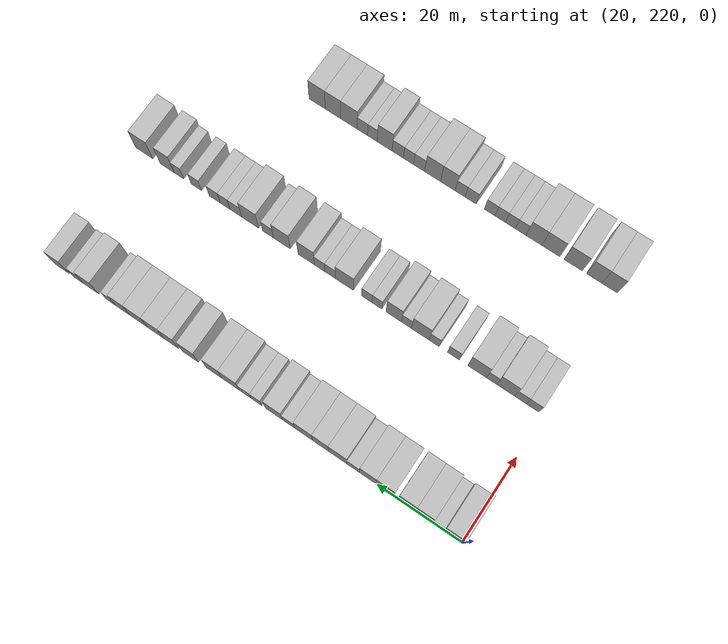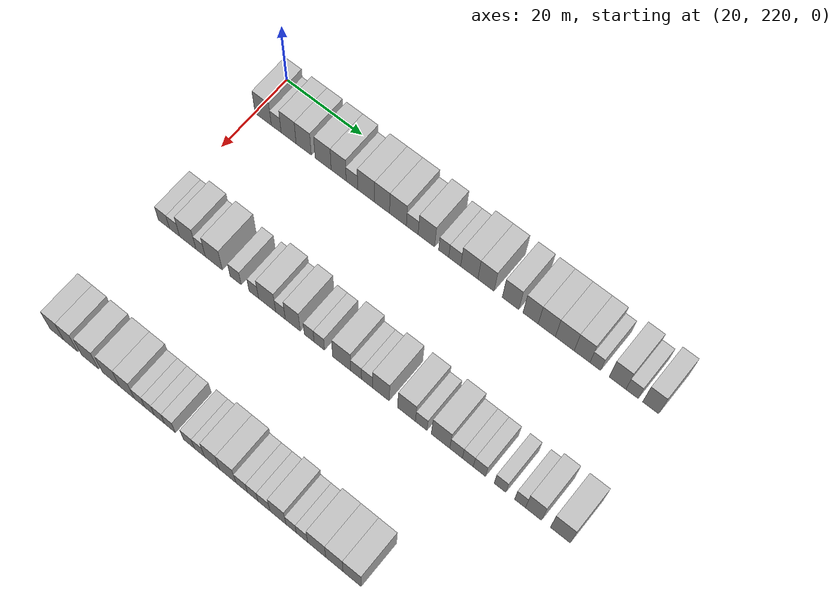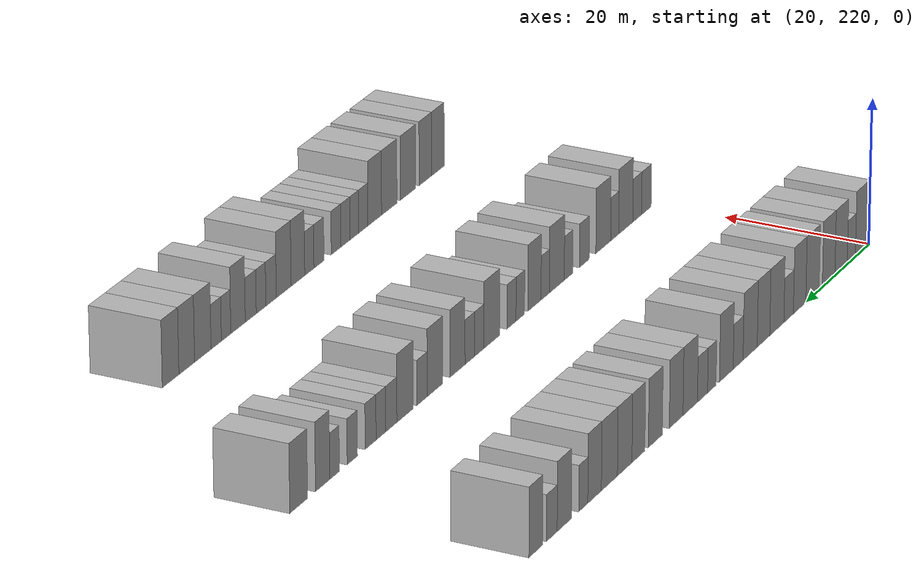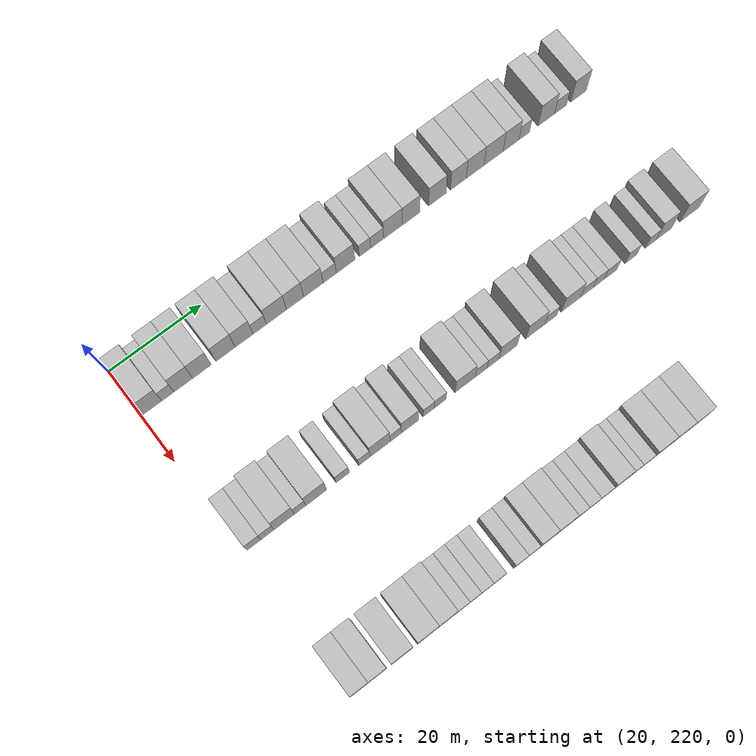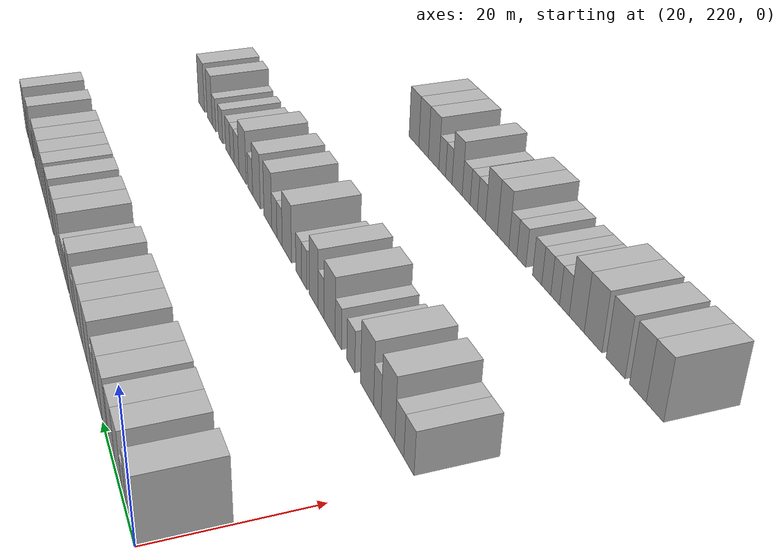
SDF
<sdf version="1.6">
 <world name="default">
  <model name="building_163">
   <static>1</static>
   <pose>25.0000 222.2776 0 0.000000 0.000000 0.000000</pose>
   <link name="link">
    <pose>0 0 4.50 0 0 0</pose>
    <collision name="collision"><geometry><box><size>10.0000 4.3677 9.0000</size></box></geometry></collision>
    <visual name="visual">
     <cast_shadows>0</cast_shadows>
     <geometry><box><size>10.0000 4.3677 9.0000</size></box></geometry>
     <material>
      <script>
       <uri>model://HANNAS_wall/materials/scripts</uri>
       <uri>model://HANNAS_wall/materials/textures</uri>
       <name>vrc/HANNAS_wall</name>
      </script>
     </material>
    </visual>
   </link>
  </model>
  <model name="building_164">
   <static>1</static>
   <pose>25.0000 225.7676 0 0.000000 0.000000 0.000000</pose>
   <link name="link">
    <pose>0 0 3.00 0 0 0</pose>
    <collision name="collision"><geometry><box><size>10.0000 2.6122 6.0000</size></box></geometry></collision>
    <visual name="visual">
     <cast_shadows>0</cast_shadows>
     <geometry><box><size>10.0000 2.6122 6.0000</size></box></geometry>
     <material>
      <script>
       <uri>model://HANNAS_wall/materials/scripts</uri>
       <uri>model://HANNAS_wall/materials/textures</uri>
       <name>vrc/HANNAS_wall</name>
      </script>
     </material>
    </visual>
   </link>
  </model>
  <model name="building_165">
   <static>1</static>
   <pose>25.0000 229.0635 0 0.000000 0.000000 0.000000</pose>
   <link name="link">
    <pose>0 0 4.50 0 0 0</pose>
    <collision name="collision"><geometry><box><size>10.0000 3.9796 9.0000</size></box></geometry></collision>
    <visual name="visual">
     <cast_shadows>0</cast_shadows>
     <geometry><box><size>10.0000 3.9796 9.0000</size></box></geometry>
     <material>
      <script>
       <uri>model://HANNAS_wall/materials/scripts</uri>
       <uri>model://HANNAS_wall/materials/textures</uri>
       <name>vrc/HANNAS_wall</name>
      </script>
     </material>
    </visual>
   </link>
  </model>
  <model name="building_166">
   <static>1</static>
   <pose>25.0000 233.0500 0 0.000000 0.000000 0.000000</pose>
   <link name="link">
    <pose>0 0 4.50 0 0 0</pose>
    <collision name="collision"><geometry><box><size>10.0000 3.9934 9.0000</size></box></geometry></collision>
    <visual name="visual">
     <cast_shadows>0</cast_shadows>
     <geometry><box><size>10.0000 3.9934 9.0000</size></box></geometry>
     <material>
      <script>
       <uri>model://HANNAS_wall/materials/scripts</uri>
       <uri>model://HANNAS_wall/materials/textures</uri>
       <name>vrc/HANNAS_wall</name>
      </script>
     </material>
    </visual>
   </link>
  </model>
  <model name="building_167">
   <static>1</static>
   <pose>25.0000 238.1424 0 0.000000 0.000000 0.000000</pose>
   <link name="link">
    <pose>0 0 4.50 0 0 0</pose>
    <collision name="collision"><geometry><box><size>10.0000 4.1913 9.0000</size></box></geometry></collision>
    <visual name="visual">
     <cast_shadows>0</cast_shadows>
     <geometry><box><size>10.0000 4.1913 9.0000</size></box></geometry>
     <material>
      <script>
       <uri>model://HANNAS_wall/materials/scripts</uri>
       <uri>model://HANNAS_wall/materials/textures</uri>
       <name>vrc/HANNAS_wall</name>
      </script>
     </material>
    </visual>
   </link>
  </model>
  <model name="building_168">
   <static>1</static>
   <pose>25.0000 242.1798 0 0.000000 0.000000 0.000000</pose>
   <link name="link">
    <pose>0 0 4.50 0 0 0</pose>
    <collision name="collision"><geometry><box><size>10.0000 3.8835 9.0000</size></box></geometry></collision>
    <visual name="visual">
     <cast_shadows>0</cast_shadows>
     <geometry><box><size>10.0000 3.8835 9.0000</size></box></geometry>
     <material>
      <script>
       <uri>model://HANNAS_wall/materials/scripts</uri>
       <uri>model://HANNAS_wall/materials/textures</uri>
       <name>vrc/HANNAS_wall</name>
      </script>
     </material>
    </visual>
   </link>
  </model>
  <model name="building_169">
   <static>1</static>
   <pose>25.0000 245.5953 0 0.000000 0.000000 0.000000</pose>
   <link name="link">
    <pose>0 0 3.00 0 0 0</pose>
    <collision name="collision"><geometry><box><size>10.0000 2.9475 6.0000</size></box></geometry></collision>
    <visual name="visual">
     <cast_shadows>0</cast_shadows>
     <geometry><box><size>10.0000 2.9475 6.0000</size></box></geometry>
     <material>
      <script>
       <uri>model://HANNAS_wall/materials/scripts</uri>
       <uri>model://HANNAS_wall/materials/textures</uri>
       <name>vrc/HANNAS_wall</name>
      </script>
     </material>
    </visual>
   </link>
  </model>
  <model name="building_170">
   <static>1</static>
   <pose>25.0000 249.2444 0 0.000000 0.000000 0.000000</pose>
   <link name="link">
    <pose>0 0 4.50 0 0 0</pose>
    <collision name="collision"><geometry><box><size>10.0000 4.3506 9.0000</size></box></geometry></collision>
    <visual name="visual">
     <cast_shadows>0</cast_shadows>
     <geometry><box><size>10.0000 4.3506 9.0000</size></box></geometry>
     <material>
      <script>
       <uri>model://HANNAS_wall/materials/scripts</uri>
       <uri>model://HANNAS_wall/materials/textures</uri>
       <name>vrc/HANNAS_wall</name>
      </script>
     </material>
    </visual>
   </link>
  </model>
  <model name="building_171">
   <static>1</static>
   <pose>25.0000 253.3338 0 0.000000 0.000000 0.000000</pose>
   <link name="link">
    <pose>0 0 4.50 0 0 0</pose>
    <collision name="collision"><geometry><box><size>10.0000 3.8282 9.0000</size></box></geometry></collision>
    <visual name="visual">
     <cast_shadows>0</cast_shadows>
     <geometry><box><size>10.0000 3.8282 9.0000</size></box></geometry>
     <material>
      <script>
       <uri>model://HANNAS_wall/materials/scripts</uri>
       <uri>model://HANNAS_wall/materials/textures</uri>
       <name>vrc/HANNAS_wall</name>
      </script>
     </material>
    </visual>
   </link>
  </model>
  <model name="building_172">
   <static>1</static>
   <pose>25.0000 257.3869 0 0.000000 0.000000 0.000000</pose>
   <link name="link">
    <pose>0 0 4.50 0 0 0</pose>
    <collision name="collision"><geometry><box><size>10.0000 4.2780 9.0000</size></box></geometry></collision>
    <visual name="visual">
     <cast_shadows>0</cast_shadows>
     <geometry><box><size>10.0000 4.2780 9.0000</size></box></geometry>
     <material>
      <script>
       <uri>model://HANNAS_wall/materials/scripts</uri>
       <uri>model://HANNAS_wall/materials/textures</uri>
       <name>vrc/HANNAS_wall</name>
      </script>
     </material>
    </visual>
   </link>
  </model>
  <model name="building_173">
   <static>1</static>
   <pose>25.0000 261.0052 0 0.000000 0.000000 0.000000</pose>
   <link name="link">
    <pose>0 0 3.00 0 0 0</pose>
    <collision name="collision"><geometry><box><size>10.0000 2.9587 6.0000</size></box></geometry></collision>
    <visual name="visual">
     <cast_shadows>0</cast_shadows>
     <geometry><box><size>10.0000 2.9587 6.0000</size></box></geometry>
     <material>
      <script>
       <uri>model://HANNAS_wall/materials/scripts</uri>
       <uri>model://HANNAS_wall/materials/textures</uri>
       <name>vrc/HANNAS_wall</name>
      </script>
     </material>
    </visual>
   </link>
  </model>
  <model name="building_174">
   <static>1</static>
   <pose>25.0000 264.5489 0 0.000000 0.000000 0.000000</pose>
   <link name="link">
    <pose>0 0 4.50 0 0 0</pose>
    <collision name="collision"><geometry><box><size>10.0000 4.1287 9.0000</size></box></geometry></collision>
    <visual name="visual">
     <cast_shadows>0</cast_shadows>
     <geometry><box><size>10.0000 4.1287 9.0000</size></box></geometry>
     <material>
      <script>
       <uri>model://HANNAS_wall/materials/scripts</uri>
       <uri>model://HANNAS_wall/materials/textures</uri>
       <name>vrc/HANNAS_wall</name>
      </script>
     </material>
    </visual>
   </link>
  </model>
  <model name="building_175">
   <static>1</static>
   <pose>25.0000 268.8634 0 0.000000 0.000000 0.000000</pose>
   <link name="link">
    <pose>0 0 3.00 0 0 0</pose>
    <collision name="collision"><geometry><box><size>10.0000 2.5002 6.0000</size></box></geometry></collision>
    <visual name="visual">
     <cast_shadows>0</cast_shadows>
     <geometry><box><size>10.0000 2.5002 6.0000</size></box></geometry>
     <material>
      <script>
       <uri>model://HANNAS_wall/materials/scripts</uri>
       <uri>model://HANNAS_wall/materials/textures</uri>
       <name>vrc/HANNAS_wall</name>
      </script>
     </material>
    </visual>
   </link>
  </model>
  <model name="building_176">
   <static>1</static>
   <pose>25.0000 271.5925 0 0.000000 0.000000 0.000000</pose>
   <link name="link">
    <pose>0 0 3.00 0 0 0</pose>
    <collision name="collision"><geometry><box><size>10.0000 2.9580 6.0000</size></box></geometry></collision>
    <visual name="visual">
     <cast_shadows>0</cast_shadows>
     <geometry><box><size>10.0000 2.9580 6.0000</size></box></geometry>
     <material>
      <script>
       <uri>model://HANNAS_wall/materials/scripts</uri>
       <uri>model://HANNAS_wall/materials/textures</uri>
       <name>vrc/HANNAS_wall</name>
      </script>
     </material>
    </visual>
   </link>
  </model>
  <model name="building_177">
   <static>1</static>
   <pose>25.0000 275.1856 0 0.000000 0.000000 0.000000</pose>
   <link name="link">
    <pose>0 0 4.50 0 0 0</pose>
    <collision name="collision"><geometry><box><size>10.0000 4.2283 9.0000</size></box></geometry></collision>
    <visual name="visual">
     <cast_shadows>0</cast_shadows>
     <geometry><box><size>10.0000 4.2283 9.0000</size></box></geometry>
     <material>
      <script>
       <uri>model://HANNAS_wall/materials/scripts</uri>
       <uri>model://HANNAS_wall/materials/textures</uri>
       <name>vrc/HANNAS_wall</name>
      </script>
     </material>
    </visual>
   </link>
  </model>
  <model name="building_178">
   <static>1</static>
   <pose>25.0000 279.2788 0 0.000000 0.000000 0.000000</pose>
   <link name="link">
    <pose>0 0 4.50 0 0 0</pose>
    <collision name="collision"><geometry><box><size>10.0000 3.9580 9.0000</size></box></geometry></collision>
    <visual name="visual">
     <cast_shadows>0</cast_shadows>
     <geometry><box><size>10.0000 3.9580 9.0000</size></box></geometry>
     <material>
      <script>
       <uri>model://HANNAS_wall/materials/scripts</uri>
       <uri>model://HANNAS_wall/materials/textures</uri>
       <name>vrc/HANNAS_wall</name>
      </script>
     </material>
    </visual>
   </link>
  </model>
  <model name="building_179">
   <static>1</static>
   <pose>25.0000 285.2538 0 0.000000 0.000000 0.000000</pose>
   <link name="link">
    <pose>0 0 4.50 0 0 0</pose>
    <collision name="collision"><geometry><box><size>10.0000 3.9919 9.0000</size></box></geometry></collision>
    <visual name="visual">
     <cast_shadows>0</cast_shadows>
     <geometry><box><size>10.0000 3.9919 9.0000</size></box></geometry>
     <material>
      <script>
       <uri>model://HANNAS_wall/materials/scripts</uri>
       <uri>model://HANNAS_wall/materials/textures</uri>
       <name>vrc/HANNAS_wall</name>
      </script>
     </material>
    </visual>
   </link>
  </model>
  <model name="building_180">
   <static>1</static>
   <pose>25.0000 290.0661 0 0.000000 0.000000 0.000000</pose>
   <link name="link">
    <pose>0 0 4.50 0 0 0</pose>
    <collision name="collision"><geometry><box><size>10.0000 3.6327 9.0000</size></box></geometry></collision>
    <visual name="visual">
     <cast_shadows>0</cast_shadows>
     <geometry><box><size>10.0000 3.6327 9.0000</size></box></geometry>
     <material>
      <script>
       <uri>model://HANNAS_wall/materials/scripts</uri>
       <uri>model://HANNAS_wall/materials/textures</uri>
       <name>vrc/HANNAS_wall</name>
      </script>
     </material>
    </visual>
   </link>
  </model>
  <model name="building_181">
   <static>1</static>
   <pose>25.0000 293.9302 0 0.000000 0.000000 0.000000</pose>
   <link name="link">
    <pose>0 0 4.50 0 0 0</pose>
    <collision name="collision"><geometry><box><size>10.0000 4.0955 9.0000</size></box></geometry></collision>
    <visual name="visual">
     <cast_shadows>0</cast_shadows>
     <geometry><box><size>10.0000 4.0955 9.0000</size></box></geometry>
     <material>
      <script>
       <uri>model://HANNAS_wall/materials/scripts</uri>
       <uri>model://HANNAS_wall/materials/textures</uri>
       <name>vrc/HANNAS_wall</name>
      </script>
     </material>
    </visual>
   </link>
  </model>
  <model name="building_182">
   <static>1</static>
   <pose>25.0000 298.2019 0 0.000000 0.000000 0.000000</pose>
   <link name="link">
    <pose>0 0 4.50 0 0 0</pose>
    <collision name="collision"><geometry><box><size>10.0000 4.4479 9.0000</size></box></geometry></collision>
    <visual name="visual">
     <cast_shadows>0</cast_shadows>
     <geometry><box><size>10.0000 4.4479 9.0000</size></box></geometry>
     <material>
      <script>
       <uri>model://HANNAS_wall/materials/scripts</uri>
       <uri>model://HANNAS_wall/materials/textures</uri>
       <name>vrc/HANNAS_wall</name>
      </script>
     </material>
    </visual>
   </link>
  </model>
  <model name="building_183">
   <static>1</static>
   <pose>25.0000 302.2814 0 0.000000 0.000000 0.000000</pose>
   <link name="link">
    <pose>0 0 4.50 0 0 0</pose>
    <collision name="collision"><geometry><box><size>10.0000 3.7111 9.0000</size></box></geometry></collision>
    <visual name="visual">
     <cast_shadows>0</cast_shadows>
     <geometry><box><size>10.0000 3.7111 9.0000</size></box></geometry>
     <material>
      <script>
       <uri>model://HANNAS_wall/materials/scripts</uri>
       <uri>model://HANNAS_wall/materials/textures</uri>
       <name>vrc/HANNAS_wall</name>
      </script>
     </material>
    </visual>
   </link>
  </model>
  <model name="building_184">
   <static>1</static>
   <pose>25.0000 305.3809 0 0.000000 0.000000 0.000000</pose>
   <link name="link">
    <pose>0 0 3.00 0 0 0</pose>
    <collision name="collision"><geometry><box><size>10.0000 2.4879 6.0000</size></box></geometry></collision>
    <visual name="visual">
     <cast_shadows>0</cast_shadows>
     <geometry><box><size>10.0000 2.4879 6.0000</size></box></geometry>
     <material>
      <script>
       <uri>model://HANNAS_wall/materials/scripts</uri>
       <uri>model://HANNAS_wall/materials/textures</uri>
       <name>vrc/HANNAS_wall</name>
      </script>
     </material>
    </visual>
   </link>
  </model>
  <model name="building_185">
   <static>1</static>
   <pose>25.0000 310.5523 0 0.000000 0.000000 0.000000</pose>
   <link name="link">
    <pose>0 0 4.50 0 0 0</pose>
    <collision name="collision"><geometry><box><size>10.0000 3.8550 9.0000</size></box></geometry></collision>
    <visual name="visual">
     <cast_shadows>0</cast_shadows>
     <geometry><box><size>10.0000 3.8550 9.0000</size></box></geometry>
     <material>
      <script>
       <uri>model://HANNAS_wall/materials/scripts</uri>
       <uri>model://HANNAS_wall/materials/textures</uri>
       <name>vrc/HANNAS_wall</name>
      </script>
     </material>
    </visual>
   </link>
  </model>
  <model name="building_186">
   <static>1</static>
   <pose>25.0000 313.9074 0 0.000000 0.000000 0.000000</pose>
   <link name="link">
    <pose>0 0 3.00 0 0 0</pose>
    <collision name="collision"><geometry><box><size>10.0000 2.8551 6.0000</size></box></geometry></collision>
    <visual name="visual">
     <cast_shadows>0</cast_shadows>
     <geometry><box><size>10.0000 2.8551 6.0000</size></box></geometry>
     <material>
      <script>
       <uri>model://HANNAS_wall/materials/scripts</uri>
       <uri>model://HANNAS_wall/materials/textures</uri>
       <name>vrc/HANNAS_wall</name>
      </script>
     </material>
    </visual>
   </link>
  </model>
  <model name="building_187">
   <static>1</static>
   <pose>25.0000 318.1734 0 0.000000 0.000000 0.000000</pose>
   <link name="link">
    <pose>0 0 4.50 0 0 0</pose>
    <collision name="collision"><geometry><box><size>10.0000 3.6770 9.0000</size></box></geometry></collision>
    <visual name="visual">
     <cast_shadows>0</cast_shadows>
     <geometry><box><size>10.0000 3.6770 9.0000</size></box></geometry>
     <material>
      <script>
       <uri>model://HANNAS_wall/materials/scripts</uri>
       <uri>model://HANNAS_wall/materials/textures</uri>
       <name>vrc/HANNAS_wall</name>
      </script>
     </material>
    </visual>
   </link>
  </model>
  <model name="building_401">
   <static>1</static>
   <pose>55.0000 222.5663 0 0.000000 0.000000 0.000000</pose>
   <link name="link">
    <pose>0 0 3.00 0 0 0</pose>
    <collision name="collision"><geometry><box><size>10.0000 2.9619 6.0000</size></box></geometry></collision>
    <visual name="visual">
     <cast_shadows>0</cast_shadows>
     <geometry><box><size>10.0000 2.9619 6.0000</size></box></geometry>
     <material>
      <script>
       <uri>model://HANNAS_wall/materials/scripts</uri>
       <uri>model://HANNAS_wall/materials/textures</uri>
       <name>vrc/HANNAS_wall</name>
      </script>
     </material>
    </visual>
   </link>
  </model>
  <model name="building_402">
   <static>1</static>
   <pose>55.0000 225.3901 0 0.000000 0.000000 0.000000</pose>
   <link name="link">
    <pose>0 0 3.00 0 0 0</pose>
    <collision name="collision"><geometry><box><size>10.0000 2.6856 6.0000</size></box></geometry></collision>
    <visual name="visual">
     <cast_shadows>0</cast_shadows>
     <geometry><box><size>10.0000 2.6856 6.0000</size></box></geometry>
     <material>
      <script>
       <uri>model://HANNAS_wall/materials/scripts</uri>
       <uri>model://HANNAS_wall/materials/textures</uri>
       <name>vrc/HANNAS_wall</name>
      </script>
     </material>
    </visual>
   </link>
  </model>
  <model name="building_403">
   <static>1</static>
   <pose>55.0000 228.8877 0 0.000000 0.000000 0.000000</pose>
   <link name="link">
    <pose>0 0 4.50 0 0 0</pose>
    <collision name="collision"><geometry><box><size>10.0000 4.3097 9.0000</size></box></geometry></collision>
    <visual name="visual">
     <cast_shadows>0</cast_shadows>
     <geometry><box><size>10.0000 4.3097 9.0000</size></box></geometry>
     <material>
      <script>
       <uri>model://HANNAS_wall/materials/scripts</uri>
       <uri>model://HANNAS_wall/materials/textures</uri>
       <name>vrc/HANNAS_wall</name>
      </script>
     </material>
    </visual>
   </link>
  </model>
  <model name="building_404">
   <static>1</static>
   <pose>55.0000 232.2530 0 0.000000 0.000000 0.000000</pose>
   <link name="link">
    <pose>0 0 3.00 0 0 0</pose>
    <collision name="collision"><geometry><box><size>10.0000 2.4209 6.0000</size></box></geometry></collision>
    <visual name="visual">
     <cast_shadows>0</cast_shadows>
     <geometry><box><size>10.0000 2.4209 6.0000</size></box></geometry>
     <material>
      <script>
       <uri>model://HANNAS_wall/materials/scripts</uri>
       <uri>model://HANNAS_wall/materials/textures</uri>
       <name>vrc/HANNAS_wall</name>
      </script>
     </material>
    </visual>
   </link>
  </model>
  <model name="building_405">
   <static>1</static>
   <pose>55.0000 235.6841 0 0.000000 0.000000 0.000000</pose>
   <link name="link">
    <pose>0 0 4.50 0 0 0</pose>
    <collision name="collision"><geometry><box><size>10.0000 4.4413 9.0000</size></box></geometry></collision>
    <visual name="visual">
     <cast_shadows>0</cast_shadows>
     <geometry><box><size>10.0000 4.4413 9.0000</size></box></geometry>
     <material>
      <script>
       <uri>model://HANNAS_wall/materials/scripts</uri>
       <uri>model://HANNAS_wall/materials/textures</uri>
       <name>vrc/HANNAS_wall</name>
      </script>
     </material>
    </visual>
   </link>
  </model>
  <model name="building_406">
   <static>1</static>
   <pose>55.0000 241.3434 0 0.000000 0.000000 0.000000</pose>
   <link name="link">
    <pose>0 0 3.00 0 0 0</pose>
    <collision name="collision"><geometry><box><size>10.0000 2.8772 6.0000</size></box></geometry></collision>
    <visual name="visual">
     <cast_shadows>0</cast_shadows>
     <geometry><box><size>10.0000 2.8772 6.0000</size></box></geometry>
     <material>
      <script>
       <uri>model://HANNAS_wall/materials/scripts</uri>
       <uri>model://HANNAS_wall/materials/textures</uri>
       <name>vrc/HANNAS_wall</name>
      </script>
     </material>
    </visual>
   </link>
  </model>
  <model name="building_407">
   <static>1</static>
   <pose>55.0000 246.0012 0 0.000000 0.000000 0.000000</pose>
   <link name="link">
    <pose>0 0 3.00 0 0 0</pose>
    <collision name="collision"><geometry><box><size>10.0000 2.4385 6.0000</size></box></geometry></collision>
    <visual name="visual">
     <cast_shadows>0</cast_shadows>
     <geometry><box><size>10.0000 2.4385 6.0000</size></box></geometry>
     <material>
      <script>
       <uri>model://HANNAS_wall/materials/scripts</uri>
       <uri>model://HANNAS_wall/materials/textures</uri>
       <name>vrc/HANNAS_wall</name>
      </script>
     </material>
    </visual>
   </link>
  </model>
  <model name="building_408">
   <static>1</static>
   <pose>55.0000 249.3971 0 0.000000 0.000000 0.000000</pose>
   <link name="link">
    <pose>0 0 4.50 0 0 0</pose>
    <collision name="collision"><geometry><box><size>10.0000 4.3533 9.0000</size></box></geometry></collision>
    <visual name="visual">
     <cast_shadows>0</cast_shadows>
     <geometry><box><size>10.0000 4.3533 9.0000</size></box></geometry>
     <material>
      <script>
       <uri>model://HANNAS_wall/materials/scripts</uri>
       <uri>model://HANNAS_wall/materials/textures</uri>
       <name>vrc/HANNAS_wall</name>
      </script>
     </material>
    </visual>
   </link>
  </model>
  <model name="building_409">
   <static>1</static>
   <pose>55.0000 252.7903 0 0.000000 0.000000 0.000000</pose>
   <link name="link">
    <pose>0 0 3.00 0 0 0</pose>
    <collision name="collision"><geometry><box><size>10.0000 2.4331 6.0000</size></box></geometry></collision>
    <visual name="visual">
     <cast_shadows>0</cast_shadows>
     <geometry><box><size>10.0000 2.4331 6.0000</size></box></geometry>
     <material>
      <script>
       <uri>model://HANNAS_wall/materials/scripts</uri>
       <uri>model://HANNAS_wall/materials/textures</uri>
       <name>vrc/HANNAS_wall</name>
      </script>
     </material>
    </visual>
   </link>
  </model>
  <model name="building_410">
   <static>1</static>
   <pose>55.0000 255.8852 0 0.000000 0.000000 0.000000</pose>
   <link name="link">
    <pose>0 0 4.50 0 0 0</pose>
    <collision name="collision"><geometry><box><size>10.0000 3.7566 9.0000</size></box></geometry></collision>
    <visual name="visual">
     <cast_shadows>0</cast_shadows>
     <geometry><box><size>10.0000 3.7566 9.0000</size></box></geometry>
     <material>
      <script>
       <uri>model://HANNAS_wall/materials/scripts</uri>
       <uri>model://HANNAS_wall/materials/textures</uri>
       <name>vrc/HANNAS_wall</name>
      </script>
     </material>
    </visual>
   </link>
  </model>
  <model name="building_411">
   <static>1</static>
   <pose>55.0000 259.9890 0 0.000000 0.000000 0.000000</pose>
   <link name="link">
    <pose>0 0 3.00 0 0 0</pose>
    <collision name="collision"><geometry><box><size>10.0000 2.4510 6.0000</size></box></geometry></collision>
    <visual name="visual">
     <cast_shadows>0</cast_shadows>
     <geometry><box><size>10.0000 2.4510 6.0000</size></box></geometry>
     <material>
      <script>
       <uri>model://HANNAS_wall/materials/scripts</uri>
       <uri>model://HANNAS_wall/materials/textures</uri>
       <name>vrc/HANNAS_wall</name>
      </script>
     </material>
    </visual>
   </link>
  </model>
  <model name="building_412">
   <static>1</static>
   <pose>55.0000 262.5084 0 0.000000 0.000000 0.000000</pose>
   <link name="link">
    <pose>0 0 3.00 0 0 0</pose>
    <collision name="collision"><geometry><box><size>10.0000 2.5878 6.0000</size></box></geometry></collision>
    <visual name="visual">
     <cast_shadows>0</cast_shadows>
     <geometry><box><size>10.0000 2.5878 6.0000</size></box></geometry>
     <material>
      <script>
       <uri>model://HANNAS_wall/materials/scripts</uri>
       <uri>model://HANNAS_wall/materials/textures</uri>
       <name>vrc/HANNAS_wall</name>
      </script>
     </material>
    </visual>
   </link>
  </model>
  <model name="building_413">
   <static>1</static>
   <pose>55.0000 268.0292 0 0.000000 0.000000 0.000000</pose>
   <link name="link">
    <pose>0 0 4.50 0 0 0</pose>
    <collision name="collision"><geometry><box><size>10.0000 4.4539 9.0000</size></box></geometry></collision>
    <visual name="visual">
     <cast_shadows>0</cast_shadows>
     <geometry><box><size>10.0000 4.4539 9.0000</size></box></geometry>
     <material>
      <script>
       <uri>model://HANNAS_wall/materials/scripts</uri>
       <uri>model://HANNAS_wall/materials/textures</uri>
       <name>vrc/HANNAS_wall</name>
      </script>
     </material>
    </visual>
   </link>
  </model>
  <model name="building_414">
   <static>1</static>
   <pose>55.0000 271.5794 0 0.000000 0.000000 0.000000</pose>
   <link name="link">
    <pose>0 0 3.00 0 0 0</pose>
    <collision name="collision"><geometry><box><size>10.0000 2.6465 6.0000</size></box></geometry></collision>
    <visual name="visual">
     <cast_shadows>0</cast_shadows>
     <geometry><box><size>10.0000 2.6465 6.0000</size></box></geometry>
     <material>
      <script>
       <uri>model://HANNAS_wall/materials/scripts</uri>
       <uri>model://HANNAS_wall/materials/textures</uri>
       <name>vrc/HANNAS_wall</name>
      </script>
     </material>
    </visual>
   </link>
  </model>
  <model name="building_415">
   <static>1</static>
   <pose>55.0000 274.2168 0 0.000000 0.000000 0.000000</pose>
   <link name="link">
    <pose>0 0 3.00 0 0 0</pose>
    <collision name="collision"><geometry><box><size>10.0000 2.6282 6.0000</size></box></geometry></collision>
    <visual name="visual">
     <cast_shadows>0</cast_shadows>
     <geometry><box><size>10.0000 2.6282 6.0000</size></box></geometry>
     <material>
      <script>
       <uri>model://HANNAS_wall/materials/scripts</uri>
       <uri>model://HANNAS_wall/materials/textures</uri>
       <name>vrc/HANNAS_wall</name>
      </script>
     </material>
    </visual>
   </link>
  </model>
  <model name="building_416">
   <static>1</static>
   <pose>55.0000 277.5773 0 0.000000 0.000000 0.000000</pose>
   <link name="link">
    <pose>0 0 4.50 0 0 0</pose>
    <collision name="collision"><geometry><box><size>10.0000 4.0929 9.0000</size></box></geometry></collision>
    <visual name="visual">
     <cast_shadows>0</cast_shadows>
     <geometry><box><size>10.0000 4.0929 9.0000</size></box></geometry>
     <material>
      <script>
       <uri>model://HANNAS_wall/materials/scripts</uri>
       <uri>model://HANNAS_wall/materials/textures</uri>
       <name>vrc/HANNAS_wall</name>
      </script>
     </material>
    </visual>
   </link>
  </model>
  <model name="building_417">
   <static>1</static>
   <pose>55.0000 283.7614 0 0.000000 0.000000 0.000000</pose>
   <link name="link">
    <pose>0 0 4.50 0 0 0</pose>
    <collision name="collision"><geometry><box><size>10.0000 4.2754 9.0000</size></box></geometry></collision>
    <visual name="visual">
     <cast_shadows>0</cast_shadows>
     <geometry><box><size>10.0000 4.2754 9.0000</size></box></geometry>
     <material>
      <script>
       <uri>model://HANNAS_wall/materials/scripts</uri>
       <uri>model://HANNAS_wall/materials/textures</uri>
       <name>vrc/HANNAS_wall</name>
      </script>
     </material>
    </visual>
   </link>
  </model>
  <model name="building_418">
   <static>1</static>
   <pose>55.0000 287.2820 0 0.000000 0.000000 0.000000</pose>
   <link name="link">
    <pose>0 0 3.00 0 0 0</pose>
    <collision name="collision"><geometry><box><size>10.0000 2.7657 6.0000</size></box></geometry></collision>
    <visual name="visual">
     <cast_shadows>0</cast_shadows>
     <geometry><box><size>10.0000 2.7657 6.0000</size></box></geometry>
     <material>
      <script>
       <uri>model://HANNAS_wall/materials/scripts</uri>
       <uri>model://HANNAS_wall/materials/textures</uri>
       <name>vrc/HANNAS_wall</name>
      </script>
     </material>
    </visual>
   </link>
  </model>
  <model name="building_419">
   <static>1</static>
   <pose>55.0000 291.8519 0 0.000000 0.000000 0.000000</pose>
   <link name="link">
    <pose>0 0 4.50 0 0 0</pose>
    <collision name="collision"><geometry><box><size>10.0000 4.3740 9.0000</size></box></geometry></collision>
    <visual name="visual">
     <cast_shadows>0</cast_shadows>
     <geometry><box><size>10.0000 4.3740 9.0000</size></box></geometry>
     <material>
      <script>
       <uri>model://HANNAS_wall/materials/scripts</uri>
       <uri>model://HANNAS_wall/materials/textures</uri>
       <name>vrc/HANNAS_wall</name>
      </script>
     </material>
    </visual>
   </link>
  </model>
  <model name="building_420">
   <static>1</static>
   <pose>55.0000 295.5222 0 0.000000 0.000000 0.000000</pose>
   <link name="link">
    <pose>0 0 3.00 0 0 0</pose>
    <collision name="collision"><geometry><box><size>10.0000 2.9666 6.0000</size></box></geometry></collision>
    <visual name="visual">
     <cast_shadows>0</cast_shadows>
     <geometry><box><size>10.0000 2.9666 6.0000</size></box></geometry>
     <material>
      <script>
       <uri>model://HANNAS_wall/materials/scripts</uri>
       <uri>model://HANNAS_wall/materials/textures</uri>
       <name>vrc/HANNAS_wall</name>
      </script>
     </material>
    </visual>
   </link>
  </model>
  <model name="building_421">
   <static>1</static>
   <pose>55.0000 298.2755 0 0.000000 0.000000 0.000000</pose>
   <link name="link">
    <pose>0 0 3.00 0 0 0</pose>
    <collision name="collision"><geometry><box><size>10.0000 2.5400 6.0000</size></box></geometry></collision>
    <visual name="visual">
     <cast_shadows>0</cast_shadows>
     <geometry><box><size>10.0000 2.5400 6.0000</size></box></geometry>
     <material>
      <script>
       <uri>model://HANNAS_wall/materials/scripts</uri>
       <uri>model://HANNAS_wall/materials/textures</uri>
       <name>vrc/HANNAS_wall</name>
      </script>
     </material>
    </visual>
   </link>
  </model>
  <model name="building_422">
   <static>1</static>
   <pose>55.0000 300.9756 0 0.000000 0.000000 0.000000</pose>
   <link name="link">
    <pose>0 0 3.00 0 0 0</pose>
    <collision name="collision"><geometry><box><size>10.0000 2.8603 6.0000</size></box></geometry></collision>
    <visual name="visual">
     <cast_shadows>0</cast_shadows>
     <geometry><box><size>10.0000 2.8603 6.0000</size></box></geometry>
     <material>
      <script>
       <uri>model://HANNAS_wall/materials/scripts</uri>
       <uri>model://HANNAS_wall/materials/textures</uri>
       <name>vrc/HANNAS_wall</name>
      </script>
     </material>
    </visual>
   </link>
  </model>
  <model name="building_423">
   <static>1</static>
   <pose>55.0000 305.7525 0 0.000000 0.000000 0.000000</pose>
   <link name="link">
    <pose>0 0 3.00 0 0 0</pose>
    <collision name="collision"><geometry><box><size>10.0000 2.6934 6.0000</size></box></geometry></collision>
    <visual name="visual">
     <cast_shadows>0</cast_shadows>
     <geometry><box><size>10.0000 2.6934 6.0000</size></box></geometry>
     <material>
      <script>
       <uri>model://HANNAS_wall/materials/scripts</uri>
       <uri>model://HANNAS_wall/materials/textures</uri>
       <name>vrc/HANNAS_wall</name>
      </script>
     </material>
    </visual>
   </link>
  </model>
  <model name="building_424">
   <static>1</static>
   <pose>55.0000 310.3382 0 0.000000 0.000000 0.000000</pose>
   <link name="link">
    <pose>0 0 3.00 0 0 0</pose>
    <collision name="collision"><geometry><box><size>10.0000 2.4779 6.0000</size></box></geometry></collision>
    <visual name="visual">
     <cast_shadows>0</cast_shadows>
     <geometry><box><size>10.0000 2.4779 6.0000</size></box></geometry>
     <material>
      <script>
       <uri>model://HANNAS_wall/materials/scripts</uri>
       <uri>model://HANNAS_wall/materials/textures</uri>
       <name>vrc/HANNAS_wall</name>
      </script>
     </material>
    </visual>
   </link>
  </model>
  <model name="building_425">
   <static>1</static>
   <pose>55.0000 313.4073 0 0.000000 0.000000 0.000000</pose>
   <link name="link">
    <pose>0 0 4.50 0 0 0</pose>
    <collision name="collision"><geometry><box><size>10.0000 3.6603 9.0000</size></box></geometry></collision>
    <visual name="visual">
     <cast_shadows>0</cast_shadows>
     <geometry><box><size>10.0000 3.6603 9.0000</size></box></geometry>
     <material>
      <script>
       <uri>model://HANNAS_wall/materials/scripts</uri>
       <uri>model://HANNAS_wall/materials/textures</uri>
       <name>vrc/HANNAS_wall</name>
      </script>
     </material>
    </visual>
   </link>
  </model>
  <model name="building_426">
   <static>1</static>
   <pose>55.0000 319.4829 0 0.000000 0.000000 0.000000</pose>
   <link name="link">
    <pose>0 0 4.50 0 0 0</pose>
    <collision name="collision"><geometry><box><size>10.0000 4.4909 9.0000</size></box></geometry></collision>
    <visual name="visual">
     <cast_shadows>0</cast_shadows>
     <geometry><box><size>10.0000 4.4909 9.0000</size></box></geometry>
     <material>
      <script>
       <uri>model://HANNAS_wall/materials/scripts</uri>
       <uri>model://HANNAS_wall/materials/textures</uri>
       <name>vrc/HANNAS_wall</name>
      </script>
     </material>
    </visual>
   </link>
  </model>
  <model name="building_621">
   <static>1</static>
   <pose>85.0000 222.4545 0 0.000000 0.000000 0.000000</pose>
   <link name="link">
    <pose>0 0 4.50 0 0 0</pose>
    <collision name="collision"><geometry><box><size>10.0000 3.6826 9.0000</size></box></geometry></collision>
    <visual name="visual">
     <cast_shadows>0</cast_shadows>
     <geometry><box><size>10.0000 3.6826 9.0000</size></box></geometry>
     <material>
      <script>
       <uri>model://HANNAS_wall/materials/scripts</uri>
       <uri>model://HANNAS_wall/materials/textures</uri>
       <name>vrc/HANNAS_wall</name>
      </script>
     </material>
    </visual>
   </link>
  </model>
  <model name="building_622">
   <static>1</static>
   <pose>85.0000 226.1328 0 0.000000 0.000000 0.000000</pose>
   <link name="link">
    <pose>0 0 4.50 0 0 0</pose>
    <collision name="collision"><geometry><box><size>10.0000 3.6741 9.0000</size></box></geometry></collision>
    <visual name="visual">
     <cast_shadows>0</cast_shadows>
     <geometry><box><size>10.0000 3.6741 9.0000</size></box></geometry>
     <material>
      <script>
       <uri>model://HANNAS_wall/materials/scripts</uri>
       <uri>model://HANNAS_wall/materials/textures</uri>
       <name>vrc/HANNAS_wall</name>
      </script>
     </material>
    </visual>
   </link>
  </model>
  <model name="building_623">
   <static>1</static>
   <pose>85.0000 231.1797 0 0.000000 0.000000 0.000000</pose>
   <link name="link">
    <pose>0 0 4.50 0 0 0</pose>
    <collision name="collision"><geometry><box><size>10.0000 4.4197 9.0000</size></box></geometry></collision>
    <visual name="visual">
     <cast_shadows>0</cast_shadows>
     <geometry><box><size>10.0000 4.4197 9.0000</size></box></geometry>
     <material>
      <script>
       <uri>model://HANNAS_wall/materials/scripts</uri>
       <uri>model://HANNAS_wall/materials/textures</uri>
       <name>vrc/HANNAS_wall</name>
      </script>
     </material>
    </visual>
   </link>
  </model>
  <model name="building_624">
   <static>1</static>
   <pose>85.0000 236.5958 0 0.000000 0.000000 0.000000</pose>
   <link name="link">
    <pose>0 0 4.50 0 0 0</pose>
    <collision name="collision"><geometry><box><size>10.0000 4.4124 9.0000</size></box></geometry></collision>
    <visual name="visual">
     <cast_shadows>0</cast_shadows>
     <geometry><box><size>10.0000 4.4124 9.0000</size></box></geometry>
     <material>
      <script>
       <uri>model://HANNAS_wall/materials/scripts</uri>
       <uri>model://HANNAS_wall/materials/textures</uri>
       <name>vrc/HANNAS_wall</name>
      </script>
     </material>
    </visual>
   </link>
  </model>
  <model name="building_625">
   <static>1</static>
   <pose>85.0000 240.7359 0 0.000000 0.000000 0.000000</pose>
   <link name="link">
    <pose>0 0 4.50 0 0 0</pose>
    <collision name="collision"><geometry><box><size>10.0000 3.8678 9.0000</size></box></geometry></collision>
    <visual name="visual">
     <cast_shadows>0</cast_shadows>
     <geometry><box><size>10.0000 3.8678 9.0000</size></box></geometry>
     <material>
      <script>
       <uri>model://HANNAS_wall/materials/scripts</uri>
       <uri>model://HANNAS_wall/materials/textures</uri>
       <name>vrc/HANNAS_wall</name>
      </script>
     </material>
    </visual>
   </link>
  </model>
  <model name="building_626">
   <static>1</static>
   <pose>85.0000 243.9713 0 0.000000 0.000000 0.000000</pose>
   <link name="link">
    <pose>0 0 3.00 0 0 0</pose>
    <collision name="collision"><geometry><box><size>10.0000 2.6031 6.0000</size></box></geometry></collision>
    <visual name="visual">
     <cast_shadows>0</cast_shadows>
     <geometry><box><size>10.0000 2.6031 6.0000</size></box></geometry>
     <material>
      <script>
       <uri>model://HANNAS_wall/materials/scripts</uri>
       <uri>model://HANNAS_wall/materials/textures</uri>
       <name>vrc/HANNAS_wall</name>
      </script>
     </material>
    </visual>
   </link>
  </model>
  <model name="building_627">
   <static>1</static>
   <pose>85.0000 246.4891 0 0.000000 0.000000 0.000000</pose>
   <link name="link">
    <pose>0 0 3.00 0 0 0</pose>
    <collision name="collision"><geometry><box><size>10.0000 2.4326 6.0000</size></box></geometry></collision>
    <visual name="visual">
     <cast_shadows>0</cast_shadows>
     <geometry><box><size>10.0000 2.4326 6.0000</size></box></geometry>
     <material>
      <script>
       <uri>model://HANNAS_wall/materials/scripts</uri>
       <uri>model://HANNAS_wall/materials/textures</uri>
       <name>vrc/HANNAS_wall</name>
      </script>
     </material>
    </visual>
   </link>
  </model>
  <model name="building_628">
   <static>1</static>
   <pose>85.0000 248.9899 0 0.000000 0.000000 0.000000</pose>
   <link name="link">
    <pose>0 0 3.00 0 0 0</pose>
    <collision name="collision"><geometry><box><size>10.0000 2.5689 6.0000</size></box></geometry></collision>
    <visual name="visual">
     <cast_shadows>0</cast_shadows>
     <geometry><box><size>10.0000 2.5689 6.0000</size></box></geometry>
     <material>
      <script>
       <uri>model://HANNAS_wall/materials/scripts</uri>
       <uri>model://HANNAS_wall/materials/textures</uri>
       <name>vrc/HANNAS_wall</name>
      </script>
     </material>
    </visual>
   </link>
  </model>
  <model name="building_629">
   <static>1</static>
   <pose>85.0000 251.6048 0 0.000000 0.000000 0.000000</pose>
   <link name="link">
    <pose>0 0 3.00 0 0 0</pose>
    <collision name="collision"><geometry><box><size>10.0000 2.6610 6.0000</size></box></geometry></collision>
    <visual name="visual">
     <cast_shadows>0</cast_shadows>
     <geometry><box><size>10.0000 2.6610 6.0000</size></box></geometry>
     <material>
      <script>
       <uri>model://HANNAS_wall/materials/scripts</uri>
       <uri>model://HANNAS_wall/materials/textures</uri>
       <name>vrc/HANNAS_wall</name>
      </script>
     </material>
    </visual>
   </link>
  </model>
  <model name="building_630">
   <static>1</static>
   <pose>85.0000 256.3181 0 0.000000 0.000000 0.000000</pose>
   <link name="link">
    <pose>0 0 3.00 0 0 0</pose>
    <collision name="collision"><geometry><box><size>10.0000 2.7656 6.0000</size></box></geometry></collision>
    <visual name="visual">
     <cast_shadows>0</cast_shadows>
     <geometry><box><size>10.0000 2.7656 6.0000</size></box></geometry>
     <material>
      <script>
       <uri>model://HANNAS_wall/materials/scripts</uri>
       <uri>model://HANNAS_wall/materials/textures</uri>
       <name>vrc/HANNAS_wall</name>
      </script>
     </material>
    </visual>
   </link>
  </model>
  <model name="building_631">
   <static>1</static>
   <pose>85.0000 258.9565 0 0.000000 0.000000 0.000000</pose>
   <link name="link">
    <pose>0 0 3.00 0 0 0</pose>
    <collision name="collision"><geometry><box><size>10.0000 2.5110 6.0000</size></box></geometry></collision>
    <visual name="visual">
     <cast_shadows>0</cast_shadows>
     <geometry><box><size>10.0000 2.5110 6.0000</size></box></geometry>
     <material>
      <script>
       <uri>model://HANNAS_wall/materials/scripts</uri>
       <uri>model://HANNAS_wall/materials/textures</uri>
       <name>vrc/HANNAS_wall</name>
      </script>
     </material>
    </visual>
   </link>
  </model>
  <model name="building_632">
   <static>1</static>
   <pose>85.0000 262.0581 0 0.000000 0.000000 0.000000</pose>
   <link name="link">
    <pose>0 0 4.50 0 0 0</pose>
    <collision name="collision"><geometry><box><size>10.0000 3.6922 9.0000</size></box></geometry></collision>
    <visual name="visual">
     <cast_shadows>0</cast_shadows>
     <geometry><box><size>10.0000 3.6922 9.0000</size></box></geometry>
     <material>
      <script>
       <uri>model://HANNAS_wall/materials/scripts</uri>
       <uri>model://HANNAS_wall/materials/textures</uri>
       <name>vrc/HANNAS_wall</name>
      </script>
     </material>
    </visual>
   </link>
  </model>
  <model name="building_633">
   <static>1</static>
   <pose>85.0000 265.9128 0 0.000000 0.000000 0.000000</pose>
   <link name="link">
    <pose>0 0 4.50 0 0 0</pose>
    <collision name="collision"><geometry><box><size>10.0000 4.0172 9.0000</size></box></geometry></collision>
    <visual name="visual">
     <cast_shadows>0</cast_shadows>
     <geometry><box><size>10.0000 4.0172 9.0000</size></box></geometry>
     <material>
      <script>
       <uri>model://HANNAS_wall/materials/scripts</uri>
       <uri>model://HANNAS_wall/materials/textures</uri>
       <name>vrc/HANNAS_wall</name>
      </script>
     </material>
    </visual>
   </link>
  </model>
  <model name="building_634">
   <static>1</static>
   <pose>85.0000 269.3183 0 0.000000 0.000000 0.000000</pose>
   <link name="link">
    <pose>0 0 3.00 0 0 0</pose>
    <collision name="collision"><geometry><box><size>10.0000 2.7938 6.0000</size></box></geometry></collision>
    <visual name="visual">
     <cast_shadows>0</cast_shadows>
     <geometry><box><size>10.0000 2.7938 6.0000</size></box></geometry>
     <material>
      <script>
       <uri>model://HANNAS_wall/materials/scripts</uri>
       <uri>model://HANNAS_wall/materials/textures</uri>
       <name>vrc/HANNAS_wall</name>
      </script>
     </material>
    </visual>
   </link>
  </model>
  <model name="building_635">
   <static>1</static>
   <pose>85.0000 271.9970 0 0.000000 0.000000 0.000000</pose>
   <link name="link">
    <pose>0 0 3.00 0 0 0</pose>
    <collision name="collision"><geometry><box><size>10.0000 2.5635 6.0000</size></box></geometry></collision>
    <visual name="visual">
     <cast_shadows>0</cast_shadows>
     <geometry><box><size>10.0000 2.5635 6.0000</size></box></geometry>
     <material>
      <script>
       <uri>model://HANNAS_wall/materials/scripts</uri>
       <uri>model://HANNAS_wall/materials/textures</uri>
       <name>vrc/HANNAS_wall</name>
      </script>
     </material>
    </visual>
   </link>
  </model>
  <model name="building_636">
   <static>1</static>
   <pose>85.0000 274.7309 0 0.000000 0.000000 0.000000</pose>
   <link name="link">
    <pose>0 0 3.00 0 0 0</pose>
    <collision name="collision"><geometry><box><size>10.0000 2.9044 6.0000</size></box></geometry></collision>
    <visual name="visual">
     <cast_shadows>0</cast_shadows>
     <geometry><box><size>10.0000 2.9044 6.0000</size></box></geometry>
     <material>
      <script>
       <uri>model://HANNAS_wall/materials/scripts</uri>
       <uri>model://HANNAS_wall/materials/textures</uri>
       <name>vrc/HANNAS_wall</name>
      </script>
     </material>
    </visual>
   </link>
  </model>
  <model name="building_637">
   <static>1</static>
   <pose>85.0000 278.0900 0 0.000000 0.000000 0.000000</pose>
   <link name="link">
    <pose>0 0 4.50 0 0 0</pose>
    <collision name="collision"><geometry><box><size>10.0000 3.8139 9.0000</size></box></geometry></collision>
    <visual name="visual">
     <cast_shadows>0</cast_shadows>
     <geometry><box><size>10.0000 3.8139 9.0000</size></box></geometry>
     <material>
      <script>
       <uri>model://HANNAS_wall/materials/scripts</uri>
       <uri>model://HANNAS_wall/materials/textures</uri>
       <name>vrc/HANNAS_wall</name>
      </script>
     </material>
    </visual>
   </link>
  </model>
  <model name="building_638">
   <static>1</static>
   <pose>85.0000 281.2279 0 0.000000 0.000000 0.000000</pose>
   <link name="link">
    <pose>0 0 3.00 0 0 0</pose>
    <collision name="collision"><geometry><box><size>10.0000 2.4619 6.0000</size></box></geometry></collision>
    <visual name="visual">
     <cast_shadows>0</cast_shadows>
     <geometry><box><size>10.0000 2.4619 6.0000</size></box></geometry>
     <material>
      <script>
       <uri>model://HANNAS_wall/materials/scripts</uri>
       <uri>model://HANNAS_wall/materials/textures</uri>
       <name>vrc/HANNAS_wall</name>
      </script>
     </material>
    </visual>
   </link>
  </model>
  <model name="building_639">
   <static>1</static>
   <pose>85.0000 283.7948 0 0.000000 0.000000 0.000000</pose>
   <link name="link">
    <pose>0 0 3.00 0 0 0</pose>
    <collision name="collision"><geometry><box><size>10.0000 2.6719 6.0000</size></box></geometry></collision>
    <visual name="visual">
     <cast_shadows>0</cast_shadows>
     <geometry><box><size>10.0000 2.6719 6.0000</size></box></geometry>
     <material>
      <script>
       <uri>model://HANNAS_wall/materials/scripts</uri>
       <uri>model://HANNAS_wall/materials/textures</uri>
       <name>vrc/HANNAS_wall</name>
      </script>
     </material>
    </visual>
   </link>
  </model>
  <model name="building_640">
   <static>1</static>
   <pose>85.0000 287.2605 0 0.000000 0.000000 0.000000</pose>
   <link name="link">
    <pose>0 0 4.50 0 0 0</pose>
    <collision name="collision"><geometry><box><size>10.0000 4.2594 9.0000</size></box></geometry></collision>
    <visual name="visual">
     <cast_shadows>0</cast_shadows>
     <geometry><box><size>10.0000 4.2594 9.0000</size></box></geometry>
     <material>
      <script>
       <uri>model://HANNAS_wall/materials/scripts</uri>
       <uri>model://HANNAS_wall/materials/textures</uri>
       <name>vrc/HANNAS_wall</name>
      </script>
     </material>
    </visual>
   </link>
  </model>
  <model name="building_641">
   <static>1</static>
   <pose>85.0000 291.4006 0 0.000000 0.000000 0.000000</pose>
   <link name="link">
    <pose>0 0 4.50 0 0 0</pose>
    <collision name="collision"><geometry><box><size>10.0000 4.0210 9.0000</size></box></geometry></collision>
    <visual name="visual">
     <cast_shadows>0</cast_shadows>
     <geometry><box><size>10.0000 4.0210 9.0000</size></box></geometry>
     <material>
      <script>
       <uri>model://HANNAS_wall/materials/scripts</uri>
       <uri>model://HANNAS_wall/materials/textures</uri>
       <name>vrc/HANNAS_wall</name>
      </script>
     </material>
    </visual>
   </link>
  </model>
  <model name="building_642">
   <static>1</static>
   <pose>85.0000 295.5193 0 0.000000 0.000000 0.000000</pose>
   <link name="link">
    <pose>0 0 4.50 0 0 0</pose>
    <collision name="collision"><geometry><box><size>10.0000 4.2164 9.0000</size></box></geometry></collision>
    <visual name="visual">
     <cast_shadows>0</cast_shadows>
     <geometry><box><size>10.0000 4.2164 9.0000</size></box></geometry>
     <material>
      <script>
       <uri>model://HANNAS_wall/materials/scripts</uri>
       <uri>model://HANNAS_wall/materials/textures</uri>
       <name>vrc/HANNAS_wall</name>
      </script>
     </material>
    </visual>
   </link>
  </model>
 </world>
</sdf>
